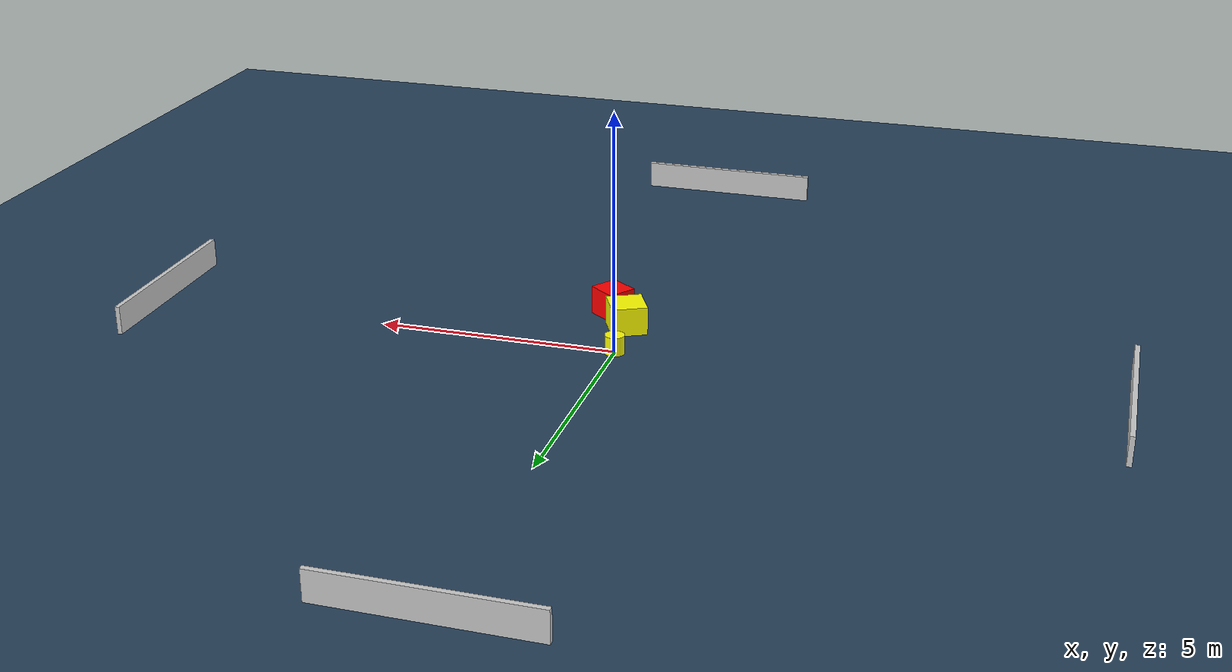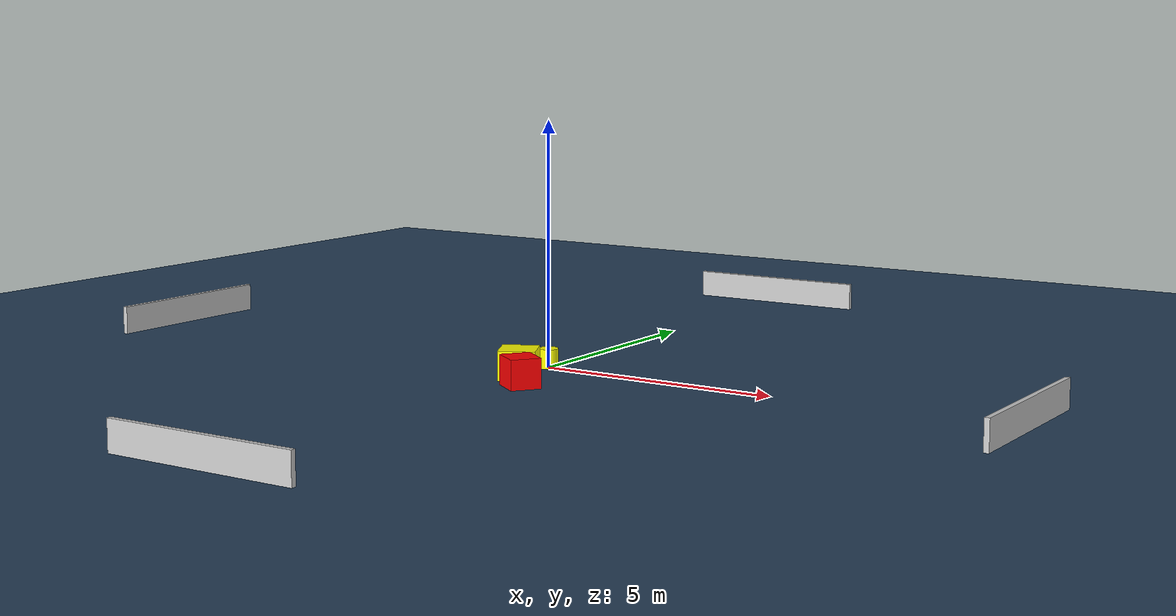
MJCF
<?xml version="1.0" ?>
<mujoco model="generated_environment">
  <option timestep="0.01" integrator="RK4" cone="elliptic"/>
  <default>
    <geom density="1"/>
  </default>
  <asset>
    <texture builtin="gradient" height="3072" name="skybox" rgb1="0.3 0.5 0.7" rgb2="0 0 0" type="skybox" width="512"/>
    <texture builtin="checker" height="300" name="groundplane" rgb1="0.2 0.3 0.4" rgb2="0.1 0.2 0.3" type="2d" width="300"/>
    <material name="groundplane" reflectance="0.2" texrepeat="5 5" texture="groundplane"/>
  </asset>
  <worldbody>
    <light dir="0 0 -1" directional="true" pos="0 0 1.5"/>
    <geom condim="3" friction="0.5 0.005 0.001" material="groundplane" name="floor" pos="0 0 0" size="0 0 0.05" type="plane"/>
    <body name="walls">
      <geom name="wall_1" condim="4" pos="-10.0 0.0 0.3" rgba="0.800000011920929 0.800000011920929 0.800000011920929 1.0" size="0.05 2.0 0.3" type="box"/>
      <geom name="wall_2" condim="4" pos="10.0 0.0 0.3" rgba="0.800000011920929 0.800000011920929 0.800000011920929 1.0" size="0.05 2.0 0.3" type="box"/>
      <geom name="wall_3" condim="4" pos="0.0 -10.0 0.3" rgba="0.800000011920929 0.800000011920929 0.800000011920929 1.0" size="2.0 0.05 0.3" type="box"/>
      <geom name="wall_4" condim="4" pos="0.0 10.0 0.3" rgba="0.800000011920929 0.800000011920929 0.800000011920929 1.0" size="2.0 0.05 0.3" type="box"/>
    </body>
    <body name="robot">
      <joint name="joint_x" type="slide" pos="0 0 0" axis="1 0 0"/>
      <joint name="joint_y" type="slide" pos="0 0 0" axis="0 1 0"/>
      <geom name="robot" type="cylinder" pos="0.0 0.0 0.2" size="0.2 0.2 0.0" mass="5.0" friction="1.0 0.005 0.0001" condim="4" rgba="1.0 1.0 0.0 1.0"/>
    </body>
    <body name="obstacle_1_movable">
      <geom name="obstacle_1_movable" condim="4" pos="0.10151067571644586 -1.2087594992222017 0.3" euler="0 0 116.38844729575266" friction="0.0 0.005 0.001" rgba="1.0 1.0 0.0 1.0" size="0.3675569267332894 0.3720932391002211 0.3" type="box" mass="0.1"/>
      <joint type="free"/>
    </body>
    <body name="obstacle_2_static">
      <geom name="obstacle_2_static" condim="4" pos="0.5954167862441367 -1.871127822627882 0.3" euler="0 0 144.23838709734534" friction="0.0 0.005 0.001" rgba="1.0 0.0 0.0 1.0" size="0.32823030454939506 0.30794849130365043 0.3" type="box"/>
    </body>
  </worldbody>
  <actuator>
    <motor name="actuator_x" joint="joint_x" gear="1" ctrlrange="-1 1"/>
    <motor name="actuator_y" joint="joint_y" gear="1" ctrlrange="-1 1"/>
  </actuator>
</mujoco>
